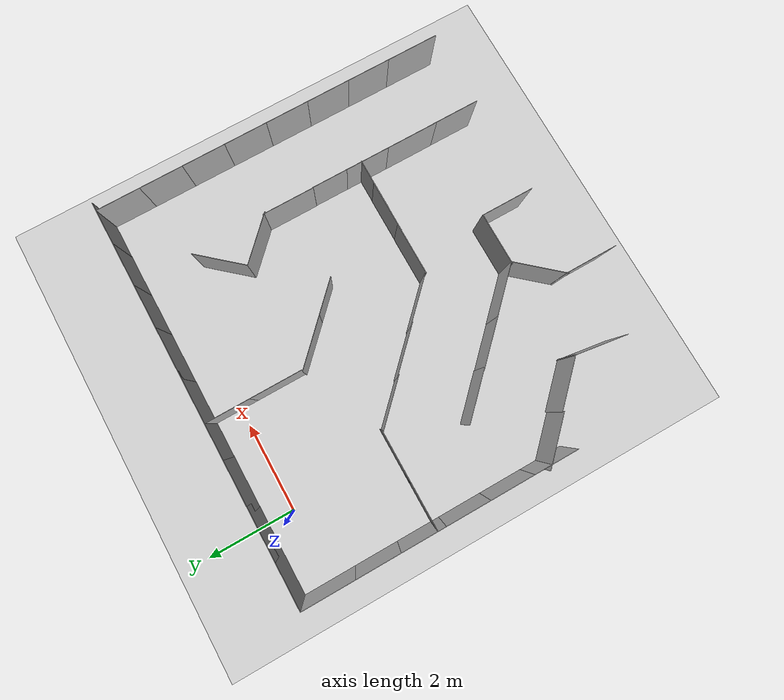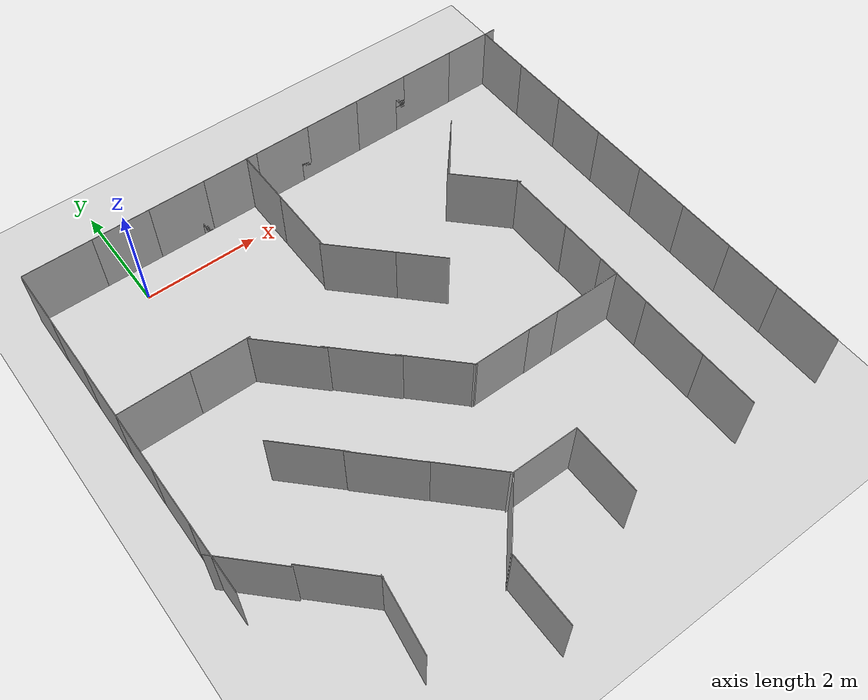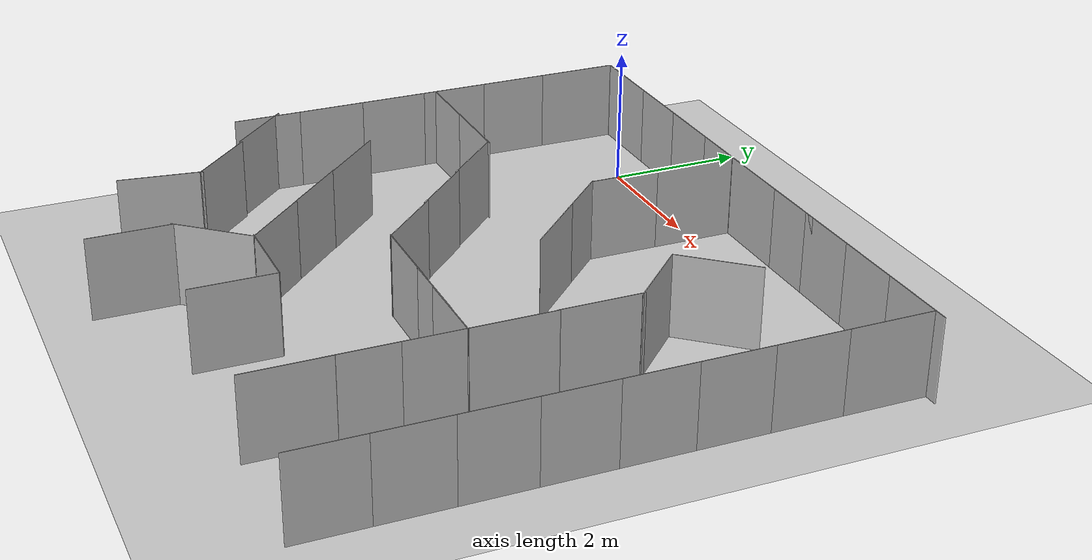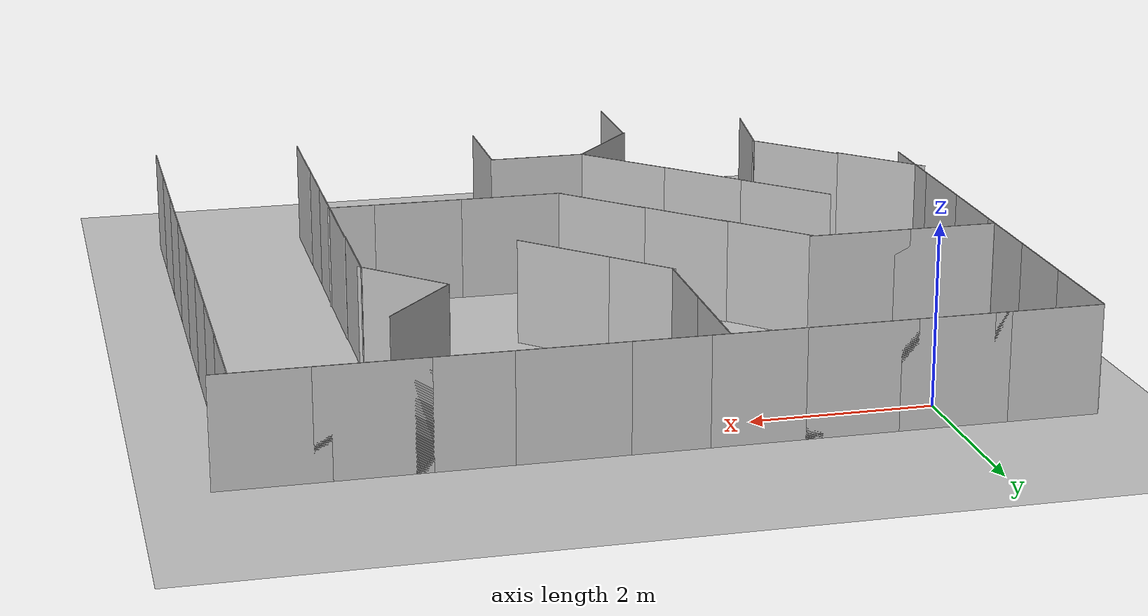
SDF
<sdf version="1.6">
 <world name="default">
  <model name="ground_plane">
   <static>1</static>
   <link name="link">
    <collision name="collision">
     <geometry><plane><normal>0 0 1</normal><size>100 100</size></plane></geometry>
     <surface>
      <contact><collide_bitmask>65535</collide_bitmask></contact>
      <friction><ode><mu>100</mu><mu2>50</mu2></ode></friction>
     </surface>
    </collision>
    <visual name="visual">
     <cast_shadows>0</cast_shadows>
     <geometry><plane><normal>0 0 1</normal><size>100 100</size></plane></geometry>
     <material>
      <script><uri>file://media/materials/scripts/gazebo.material</uri><name>Gazebo/Grey</name></script>
     </material>
    </visual>
   </link>
  </model>
  <model name="nist_maze_wall_120">
   <static>1</static>
   <link name="nist_maze_wall_120_link">
    <collision name="collision">
     <geometry>
      <mesh><uri>model://nist_maze_wall_120/meshes/nist_maze_wall_120.dae</uri><scale>1 1 1</scale></mesh>
     </geometry>
    </collision>
    <visual name="visual">
     <geometry>
      <mesh><uri>model://nist_maze_wall_120/meshes/nist_maze_wall_120.dae</uri><scale>1 1 1</scale></mesh>
     </geometry>
    </visual>
   </link>
   <pose>-1 0 0 0 -0 0</pose>
  </model>
  <model name="nist_maze_wall_120_clone">
   <static>1</static>
   <link name="nist_maze_wall_120_link">
    <collision name="collision">
     <geometry>
      <mesh><uri>model://nist_maze_wall_120/meshes/nist_maze_wall_120.dae</uri><scale>1 1 1</scale></mesh>
     </geometry>
    </collision>
    <visual name="visual">
     <geometry>
      <mesh><uri>model://nist_maze_wall_120/meshes/nist_maze_wall_120.dae</uri><scale>1 1 1</scale></mesh>
     </geometry>
    </visual>
   </link>
  </model>
  <model name="nist_maze_wall_120_clone_0">
   <static>1</static>
   <link name="nist_maze_wall_120_link">
    <collision name="collision">
     <geometry>
      <mesh><uri>model://nist_maze_wall_120/meshes/nist_maze_wall_120.dae</uri><scale>1 1 1</scale></mesh>
     </geometry>
    </collision>
    <visual name="visual">
     <geometry>
      <mesh><uri>model://nist_maze_wall_120/meshes/nist_maze_wall_120.dae</uri><scale>1 1 1</scale></mesh>
     </geometry>
    </visual>
   </link>
   <pose>1 0 0 0 -0 0</pose>
  </model>
  <model name="nist_maze_wall_120_clone_0_clone_2">
   <static>1</static>
   <link name="nist_maze_wall_120_link">
    <collision name="collision">
     <geometry>
      <mesh><uri>model://nist_maze_wall_120/meshes/nist_maze_wall_120.dae</uri><scale>1 1 1</scale></mesh>
     </geometry>
    </collision>
    <visual name="visual">
     <geometry>
      <mesh><uri>model://nist_maze_wall_120/meshes/nist_maze_wall_120.dae</uri><scale>1 1 1</scale></mesh>
     </geometry>
    </visual>
   </link>
   <pose>4 0 0 0 -0 0</pose>
  </model>
  <model name="nist_maze_wall_120_clone_0_clone_7">
   <static>1</static>
   <link name="nist_maze_wall_120_link">
    <collision name="collision">
     <geometry>
      <mesh><uri>model://nist_maze_wall_120/meshes/nist_maze_wall_120.dae</uri><scale>1 1 1</scale></mesh>
     </geometry>
    </collision>
    <visual name="visual">
     <geometry>
      <mesh><uri>model://nist_maze_wall_120/meshes/nist_maze_wall_120.dae</uri><scale>1 1 1</scale></mesh>
     </geometry>
    </visual>
   </link>
   <pose>5 0 0 0 -0 0</pose>
  </model>
  <model name="nist_maze_wall_120_clone_0_clone_8">
   <static>1</static>
   <link name="nist_maze_wall_120_link">
    <collision name="collision">
     <geometry>
      <mesh><uri>model://nist_maze_wall_120/meshes/nist_maze_wall_120.dae</uri><scale>1 1 1</scale></mesh>
     </geometry>
    </collision>
    <visual name="visual">
     <geometry>
      <mesh><uri>model://nist_maze_wall_120/meshes/nist_maze_wall_120.dae</uri><scale>1 1 1</scale></mesh>
     </geometry>
    </visual>
   </link>
   <pose>6 0 0 0 -0 0</pose>
  </model>
  <model name="nist_maze_wall_120_clone_0_clone_9">
   <static>1</static>
   <link name="nist_maze_wall_120_link">
    <collision name="collision">
     <geometry>
      <mesh><uri>model://nist_maze_wall_120/meshes/nist_maze_wall_120.dae</uri><scale>1 1 1</scale></mesh>
     </geometry>
    </collision>
    <visual name="visual">
     <geometry>
      <mesh><uri>model://nist_maze_wall_120/meshes/nist_maze_wall_120.dae</uri><scale>1 1 1</scale></mesh>
     </geometry>
    </visual>
   </link>
   <pose>2.36851 -2.42794 -0 0 0 -0.785398</pose>
  </model>
  <model name="nist_maze_wall_120_clone_0_clone_0_clone">
   <static>1</static>
   <link name="nist_maze_wall_120_link">
    <collision name="collision">
     <geometry>
      <mesh><uri>model://nist_maze_wall_120/meshes/nist_maze_wall_120.dae</uri><scale>1 1 1</scale></mesh>
     </geometry>
    </collision>
    <visual name="visual">
     <geometry>
      <mesh><uri>model://nist_maze_wall_120/meshes/nist_maze_wall_120.dae</uri><scale>1 1 1</scale></mesh>
     </geometry>
    </visual>
   </link>
   <pose>2 0 0 0 -0 0</pose>
  </model>
  <model name="nist_maze_wall_120_clone_0_clone_8_clone">
   <static>1</static>
   <link name="nist_maze_wall_120_link">
    <collision name="collision">
     <geometry>
      <mesh><uri>model://nist_maze_wall_120/meshes/nist_maze_wall_120.dae</uri><scale>1 1 1</scale></mesh>
     </geometry>
    </collision>
    <visual name="visual">
     <geometry>
      <mesh><uri>model://nist_maze_wall_120/meshes/nist_maze_wall_120.dae</uri><scale>1 1 1</scale></mesh>
     </geometry>
    </visual>
   </link>
   <pose>3 -1 0 0 -0 1.5708</pose>
  </model>
  <model name="nist_maze_wall_120_clone_0_clone_8_clone_clone">
   <static>1</static>
   <link name="nist_maze_wall_120_link">
    <collision name="collision">
     <geometry>
      <mesh><uri>model://nist_maze_wall_120/meshes/nist_maze_wall_120.dae</uri><scale>1 1 1</scale></mesh>
     </geometry>
    </collision>
    <visual name="visual">
     <geometry>
      <mesh><uri>model://nist_maze_wall_120/meshes/nist_maze_wall_120.dae</uri><scale>1 1 1</scale></mesh>
     </geometry>
    </visual>
   </link>
   <pose>3 0 0 0 -0 1.5708</pose>
  </model>
  <model name="nist_maze_wall_120_clone_0_clone_8_clone_clone_0">
   <static>1</static>
   <link name="nist_maze_wall_120_link">
    <collision name="collision">
     <geometry>
      <mesh><uri>model://nist_maze_wall_120/meshes/nist_maze_wall_120.dae</uri><scale>1 1 1</scale></mesh>
     </geometry>
    </collision>
    <visual name="visual">
     <geometry>
      <mesh><uri>model://nist_maze_wall_120/meshes/nist_maze_wall_120.dae</uri><scale>1 1 1</scale></mesh>
     </geometry>
    </visual>
   </link>
   <pose>6.24673 -4.15515 0 0 -0 1.5708</pose>
  </model>
  <model name="nist_maze_wall_120_clone_0_clone_8_clone_clone_1">
   <static>1</static>
   <link name="nist_maze_wall_120_link">
    <collision name="collision">
     <geometry>
      <mesh><uri>model://nist_maze_wall_120/meshes/nist_maze_wall_120.dae</uri><scale>1 1 1</scale></mesh>
     </geometry>
    </collision>
    <visual name="visual">
     <geometry>
      <mesh><uri>model://nist_maze_wall_120/meshes/nist_maze_wall_120.dae</uri><scale>1 1 1</scale></mesh>
     </geometry>
    </visual>
   </link>
   <pose>6.2388 -3 0 0 -0 1.5708</pose>
  </model>
  <model name="nist_maze_wall_120_clone_0_clone_8_clone_clone_2">
   <static>1</static>
   <link name="nist_maze_wall_120_link">
    <collision name="collision">
     <geometry>
      <mesh><uri>model://nist_maze_wall_120/meshes/nist_maze_wall_120.dae</uri><scale>1 1 1</scale></mesh>
     </geometry>
    </collision>
    <visual name="visual">
     <geometry>
      <mesh><uri>model://nist_maze_wall_120/meshes/nist_maze_wall_120.dae</uri><scale>1 1 1</scale></mesh>
     </geometry>
    </visual>
   </link>
   <pose>8 -2 0 0 -0 1.5708</pose>
  </model>
  <model name="nist_maze_wall_120_clone_0_clone_8_clone_clone_3">
   <static>1</static>
   <link name="nist_maze_wall_120_link">
    <collision name="collision">
     <geometry>
      <mesh><uri>model://nist_maze_wall_120/meshes/nist_maze_wall_120.dae</uri><scale>1 1 1</scale></mesh>
     </geometry>
    </collision>
    <visual name="visual">
     <geometry>
      <mesh><uri>model://nist_maze_wall_120/meshes/nist_maze_wall_120.dae</uri><scale>1 1 1</scale></mesh>
     </geometry>
    </visual>
   </link>
   <pose>8 0 0 0 -0 1.5708</pose>
  </model>
  <model name="nist_maze_wall_120_clone_0_clone_8_clone_clone_4">
   <static>1</static>
   <link name="nist_maze_wall_120_link">
    <collision name="collision">
     <geometry>
      <mesh><uri>model://nist_maze_wall_120/meshes/nist_maze_wall_120.dae</uri><scale>1 1 1</scale></mesh>
     </geometry>
    </collision>
    <visual name="visual">
     <geometry>
      <mesh><uri>model://nist_maze_wall_120/meshes/nist_maze_wall_120.dae</uri><scale>1 1 1</scale></mesh>
     </geometry>
    </visual>
   </link>
   <pose>8 -1 0 0 -0 1.5708</pose>
  </model>
  <model name="nist_maze_wall_120_clone_0_clone_8_clone_clone_5">
   <static>1</static>
   <link name="nist_maze_wall_120_link">
    <collision name="collision">
     <geometry>
      <mesh><uri>model://nist_maze_wall_120/meshes/nist_maze_wall_120.dae</uri><scale>1 1 1</scale></mesh>
     </geometry>
    </collision>
    <visual name="visual">
     <geometry>
      <mesh><uri>model://nist_maze_wall_120/meshes/nist_maze_wall_120.dae</uri><scale>1 1 1</scale></mesh>
     </geometry>
    </visual>
   </link>
   <pose>8 -4 0 0 -0 1.5708</pose>
  </model>
  <model name="nist_maze_wall_120_clone_0_clone_8_clone_clone_6">
   <static>1</static>
   <link name="nist_maze_wall_120_link">
    <collision name="collision">
     <geometry>
      <mesh><uri>model://nist_maze_wall_120/meshes/nist_maze_wall_120.dae</uri><scale>1 1 1</scale></mesh>
     </geometry>
    </collision>
    <visual name="visual">
     <geometry>
      <mesh><uri>model://nist_maze_wall_120/meshes/nist_maze_wall_120.dae</uri><scale>1 1 1</scale></mesh>
     </geometry>
    </visual>
   </link>
   <pose>-1 0 0 0 -0 1.5708</pose>
  </model>
  <model name="nist_maze_wall_120_clone_0_clone_8_clone_clone_7">
   <static>1</static>
   <link name="nist_maze_wall_120_link">
    <collision name="collision">
     <geometry>
      <mesh><uri>model://nist_maze_wall_120/meshes/nist_maze_wall_120.dae</uri><scale>1 1 1</scale></mesh>
     </geometry>
    </collision>
    <visual name="visual">
     <geometry>
      <mesh><uri>model://nist_maze_wall_120/meshes/nist_maze_wall_120.dae</uri><scale>1 1 1</scale></mesh>
     </geometry>
    </visual>
   </link>
   <pose>-1 -1 0 0 -0 1.5708</pose>
  </model>
  <model name="nist_maze_wall_120_clone_0_clone_8_clone_clone_11">
   <static>1</static>
   <link name="nist_maze_wall_120_link">
    <collision name="collision">
     <geometry>
      <mesh><uri>model://nist_maze_wall_120/meshes/nist_maze_wall_120.dae</uri><scale>1 1 1</scale></mesh>
     </geometry>
    </collision>
    <visual name="visual">
     <geometry>
      <mesh><uri>model://nist_maze_wall_120/meshes/nist_maze_wall_120.dae</uri><scale>1 1 1</scale></mesh>
     </geometry>
    </visual>
   </link>
   <pose>-1 -2 0 0 -0 1.5708</pose>
  </model>
  <model name="nist_maze_wall_120_clone_1">
   <static>1</static>
   <link name="nist_maze_wall_120_link">
    <collision name="collision">
     <geometry>
      <mesh><uri>model://nist_maze_wall_120/meshes/nist_maze_wall_120.dae</uri><scale>1 1 1</scale></mesh>
     </geometry>
    </collision>
    <visual name="visual">
     <geometry>
      <mesh><uri>model://nist_maze_wall_120/meshes/nist_maze_wall_120.dae</uri><scale>1 1 1</scale></mesh>
     </geometry>
    </visual>
   </link>
   <pose>-1 -3 0 0 -0 0</pose>
  </model>
  <model name="nist_maze_wall_120_clone_2">
   <static>1</static>
   <link name="nist_maze_wall_120_link">
    <collision name="collision">
     <geometry>
      <mesh><uri>model://nist_maze_wall_120/meshes/nist_maze_wall_120.dae</uri><scale>1 1 1</scale></mesh>
     </geometry>
    </collision>
    <visual name="visual">
     <geometry>
      <mesh><uri>model://nist_maze_wall_120/meshes/nist_maze_wall_120.dae</uri><scale>1 1 1</scale></mesh>
     </geometry>
    </visual>
   </link>
   <pose>0 -3 0 0 -0 0</pose>
  </model>
  <model name="nist_maze_wall_120_clone_3">
   <static>1</static>
   <link name="nist_maze_wall_120_link">
    <collision name="collision">
     <geometry>
      <mesh><uri>model://nist_maze_wall_120/meshes/nist_maze_wall_120.dae</uri><scale>1 1 1</scale></mesh>
     </geometry>
    </collision>
    <visual name="visual">
     <geometry>
      <mesh><uri>model://nist_maze_wall_120/meshes/nist_maze_wall_120.dae</uri><scale>1 1 1</scale></mesh>
     </geometry>
    </visual>
   </link>
   <pose>3.49655 -5.35182 0 0 -0 0</pose>
  </model>
  <model name="nist_maze_wall_120_clone_4">
   <static>1</static>
   <link name="nist_maze_wall_120_link">
    <collision name="collision">
     <geometry>
      <mesh><uri>model://nist_maze_wall_120/meshes/nist_maze_wall_120.dae</uri><scale>1 1 1</scale></mesh>
     </geometry>
    </collision>
    <visual name="visual">
     <geometry>
      <mesh><uri>model://nist_maze_wall_120/meshes/nist_maze_wall_120.dae</uri><scale>1 1 1</scale></mesh>
     </geometry>
    </visual>
   </link>
   <pose>5.06837 -5.36174 0 0 -0 0</pose>
  </model>
  <model name="nist_maze_wall_120_clone_5">
   <static>1</static>
   <link name="nist_maze_wall_120_link">
    <collision name="collision">
     <geometry>
      <mesh><uri>model://nist_maze_wall_120/meshes/nist_maze_wall_120.dae</uri><scale>1 1 1</scale></mesh>
     </geometry>
    </collision>
    <visual name="visual">
     <geometry>
      <mesh><uri>model://nist_maze_wall_120/meshes/nist_maze_wall_120.dae</uri><scale>1 1 1</scale></mesh>
     </geometry>
    </visual>
   </link>
   <pose>5.67552 -1.56373 0 0 -0 0.859737</pose>
  </model>
  <model name="nist_maze_wall_120_clone_6">
   <static>1</static>
   <link name="nist_maze_wall_120_link">
    <collision name="collision">
     <geometry>
      <mesh><uri>model://nist_maze_wall_120/meshes/nist_maze_wall_120.dae</uri><scale>1 1 1</scale></mesh>
     </geometry>
    </collision>
    <visual name="visual">
     <geometry>
      <mesh><uri>model://nist_maze_wall_120/meshes/nist_maze_wall_120.dae</uri><scale>1 1 1</scale></mesh>
     </geometry>
    </visual>
   </link>
   <pose>3 0 0 0 -0 0</pose>
  </model>
  <model name="nist_maze_wall_120_clone_7">
   <static>1</static>
   <link name="nist_maze_wall_120_link">
    <collision name="collision">
     <geometry>
      <mesh><uri>model://nist_maze_wall_120/meshes/nist_maze_wall_120.dae</uri><scale>1 1 1</scale></mesh>
     </geometry>
    </collision>
    <visual name="visual">
     <geometry>
      <mesh><uri>model://nist_maze_wall_120/meshes/nist_maze_wall_120.dae</uri><scale>1 1 1</scale></mesh>
     </geometry>
    </visual>
   </link>
   <pose>4.52175 -5.3564 0 0 -0 0</pose>
  </model>
  <model name="nist_maze_wall_120_clone_0_clone_9_clone">
   <static>1</static>
   <link name="nist_maze_wall_120_link">
    <collision name="collision">
     <geometry>
      <mesh><uri>model://nist_maze_wall_120/meshes/nist_maze_wall_120.dae</uri><scale>1 1 1</scale></mesh>
     </geometry>
    </collision>
    <visual name="visual">
     <geometry>
      <mesh><uri>model://nist_maze_wall_120/meshes/nist_maze_wall_120.dae</uri><scale>1 1 1</scale></mesh>
     </geometry>
    </visual>
   </link>
   <pose>2.95445 -3.01156 0 0 0 -0.785398</pose>
  </model>
  <model name="nist_maze_wall_120_clone_0_clone_9_clone_0">
   <static>1</static>
   <link name="nist_maze_wall_120_link">
    <collision name="collision">
     <geometry>
      <mesh><uri>model://nist_maze_wall_120/meshes/nist_maze_wall_120.dae</uri><scale>1 1 1</scale></mesh>
     </geometry>
    </collision>
    <visual name="visual">
     <geometry>
      <mesh><uri>model://nist_maze_wall_120/meshes/nist_maze_wall_120.dae</uri><scale>1 1 1</scale></mesh>
     </geometry>
    </visual>
   </link>
   <pose>0.538359 -3.24676 0 0 0 -0.785398</pose>
  </model>
  <model name="nist_maze_wall_120_clone_0_clone_9_clone_1">
   <static>1</static>
   <link name="nist_maze_wall_120_link">
    <collision name="collision">
     <geometry>
      <mesh><uri>model://nist_maze_wall_120/meshes/nist_maze_wall_120.dae</uri><scale>1 1 1</scale></mesh>
     </geometry>
    </collision>
    <visual name="visual">
     <geometry>
      <mesh><uri>model://nist_maze_wall_120/meshes/nist_maze_wall_120.dae</uri><scale>1 1 1</scale></mesh>
     </geometry>
    </visual>
   </link>
   <pose>1.32503 -4.012 0 0 0 -0.785398</pose>
  </model>
  <model name="nist_maze_wall_120_clone_0_clone_9_clone_2">
   <static>1</static>
   <link name="nist_maze_wall_120_link">
    <collision name="collision">
     <geometry>
      <mesh><uri>model://nist_maze_wall_120/meshes/nist_maze_wall_120.dae</uri><scale>1 1 1</scale></mesh>
     </geometry>
    </collision>
    <visual name="visual">
     <geometry>
      <mesh><uri>model://nist_maze_wall_120/meshes/nist_maze_wall_120.dae</uri><scale>1 1 1</scale></mesh>
     </geometry>
    </visual>
   </link>
   <pose>2.09964 -4.76804 0 0 0 -0.785398</pose>
  </model>
  <model name="nist_maze_wall_120_clone_0_clone_8_clone_0">
   <static>1</static>
   <link name="nist_maze_wall_120_link">
    <collision name="collision">
     <geometry>
      <mesh><uri>model://nist_maze_wall_120/meshes/nist_maze_wall_120.dae</uri><scale>1 1 1</scale></mesh>
     </geometry>
    </collision>
    <visual name="visual">
     <geometry>
      <mesh><uri>model://nist_maze_wall_120/meshes/nist_maze_wall_120.dae</uri><scale>1 1 1</scale></mesh>
     </geometry>
    </visual>
   </link>
   <pose>7 0 0 0 -0 0</pose>
  </model>
  <model name="nist_maze_wall_120_clone_0_clone_8_clone_clone_2_clone">
   <static>1</static>
   <link name="nist_maze_wall_120_link">
    <collision name="collision">
     <geometry>
      <mesh><uri>model://nist_maze_wall_120/meshes/nist_maze_wall_120.dae</uri><scale>1 1 1</scale></mesh>
     </geometry>
    </collision>
    <visual name="visual">
     <geometry>
      <mesh><uri>model://nist_maze_wall_120/meshes/nist_maze_wall_120.dae</uri><scale>1 1 1</scale></mesh>
     </geometry>
    </visual>
   </link>
   <pose>8 -3 0 0 -0 1.5708</pose>
  </model>
  <model name="nist_maze_wall_120_clone_0_clone_9_clone_clone">
   <static>1</static>
   <link name="nist_maze_wall_120_link">
    <collision name="collision">
     <geometry>
      <mesh><uri>model://nist_maze_wall_120/meshes/nist_maze_wall_120.dae</uri><scale>1 1 1</scale></mesh>
     </geometry>
    </collision>
    <visual name="visual">
     <geometry>
      <mesh><uri>model://nist_maze_wall_120/meshes/nist_maze_wall_120.dae</uri><scale>1 1 1</scale></mesh>
     </geometry>
    </visual>
   </link>
   <pose>4.82694 -2.46879 0 0 0 -0.785398</pose>
  </model>
  <model name="nist_maze_wall_120_clone_0_clone_8_clone_clone_5_clone">
   <static>1</static>
   <link name="nist_maze_wall_120_link">
    <collision name="collision">
     <geometry>
      <mesh><uri>model://nist_maze_wall_120/meshes/nist_maze_wall_120.dae</uri><scale>1 1 1</scale></mesh>
     </geometry>
    </collision>
    <visual name="visual">
     <geometry>
      <mesh><uri>model://nist_maze_wall_120/meshes/nist_maze_wall_120.dae</uri><scale>1 1 1</scale></mesh>
     </geometry>
    </visual>
   </link>
   <pose>8 -5 0 0 -0 1.5708</pose>
  </model>
  <model name="nist_maze_wall_120_clone_0_clone_8_clone_clone_5_clone_0">
   <static>1</static>
   <link name="nist_maze_wall_120_link">
    <collision name="collision">
     <geometry>
      <mesh><uri>model://nist_maze_wall_120/meshes/nist_maze_wall_120.dae</uri><scale>1 1 1</scale></mesh>
     </geometry>
    </collision>
    <visual name="visual">
     <geometry>
      <mesh><uri>model://nist_maze_wall_120/meshes/nist_maze_wall_120.dae</uri><scale>1 1 1</scale></mesh>
     </geometry>
    </visual>
   </link>
   <pose>8 -6 0 0 -0 1.5708</pose>
  </model>
  <model name="nist_maze_wall_120_clone_0_clone_8_clone_clone_5_clone_1">
   <static>1</static>
   <link name="nist_maze_wall_120_link">
    <collision name="collision">
     <geometry>
      <mesh><uri>model://nist_maze_wall_120/meshes/nist_maze_wall_120.dae</uri><scale>1 1 1</scale></mesh>
     </geometry>
    </collision>
    <visual name="visual">
     <geometry>
      <mesh><uri>model://nist_maze_wall_120/meshes/nist_maze_wall_120.dae</uri><scale>1 1 1</scale></mesh>
     </geometry>
    </visual>
   </link>
   <pose>8 -7 0 0 -0 1.5708</pose>
  </model>
  <model name="nist_maze_wall_120_clone_0_clone_8_clone_clone_5_clone_4">
   <static>1</static>
   <link name="nist_maze_wall_120_link">
    <collision name="collision">
     <geometry>
      <mesh><uri>model://nist_maze_wall_120/meshes/nist_maze_wall_120.dae</uri><scale>1 1 1</scale></mesh>
     </geometry>
    </collision>
    <visual name="visual">
     <geometry>
      <mesh><uri>model://nist_maze_wall_120/meshes/nist_maze_wall_120.dae</uri><scale>1 1 1</scale></mesh>
     </geometry>
    </visual>
   </link>
   <pose>6.245 -5 0 0 -0 1.5708</pose>
  </model>
  <model name="nist_maze_wall_120_clone_0_clone_8_clone_clone_5_clone_5">
   <static>1</static>
   <link name="nist_maze_wall_120_link">
    <collision name="collision">
     <geometry>
      <mesh><uri>model://nist_maze_wall_120/meshes/nist_maze_wall_120.dae</uri><scale>1 1 1</scale></mesh>
     </geometry>
    </collision>
    <visual name="visual">
     <geometry>
      <mesh><uri>model://nist_maze_wall_120/meshes/nist_maze_wall_120.dae</uri><scale>1 1 1</scale></mesh>
     </geometry>
    </visual>
   </link>
   <pose>6.2446 -6 0 0 -0 1.5708</pose>
  </model>
  <model name="nist_maze_wall_120_clone_0_clone_8_clone_clone_5_clone_6">
   <static>1</static>
   <link name="nist_maze_wall_120_link">
    <collision name="collision">
     <geometry>
      <mesh><uri>model://nist_maze_wall_120/meshes/nist_maze_wall_120.dae</uri><scale>1 1 1</scale></mesh>
     </geometry>
    </collision>
    <visual name="visual">
     <geometry>
      <mesh><uri>model://nist_maze_wall_120/meshes/nist_maze_wall_120.dae</uri><scale>1 1 1</scale></mesh>
     </geometry>
    </visual>
   </link>
   <pose>6.24737 -7 0 0 -0 1.5708</pose>
  </model>
  <model name="nist_maze_wall_120_clone_0_clone_8_clone_clone_5_clone_6_clone_1">
   <static>1</static>
   <link name="nist_maze_wall_120_link">
    <collision name="collision">
     <geometry>
      <mesh><uri>model://nist_maze_wall_120/meshes/nist_maze_wall_120.dae</uri><scale>1 1 1</scale></mesh>
     </geometry>
    </collision>
    <visual name="visual">
     <geometry>
      <mesh><uri>model://nist_maze_wall_120/meshes/nist_maze_wall_120.dae</uri><scale>1 1 1</scale></mesh>
     </geometry>
    </visual>
   </link>
   <pose>4 -7 0 0 -0 1.5708</pose>
  </model>
  <model name="nist_maze_wall_120_clone_0_clone_8_clone_clone_5_clone_6_clone_2">
   <static>1</static>
   <link name="nist_maze_wall_120_link">
    <collision name="collision">
     <geometry>
      <mesh><uri>model://nist_maze_wall_120/meshes/nist_maze_wall_120.dae</uri><scale>1 1 1</scale></mesh>
     </geometry>
    </collision>
    <visual name="visual">
     <geometry>
      <mesh><uri>model://nist_maze_wall_120/meshes/nist_maze_wall_120.dae</uri><scale>1 1 1</scale></mesh>
     </geometry>
    </visual>
   </link>
   <pose>-1 -3 0 0 -0 1.5708</pose>
  </model>
  <model name="nist_maze_wall_120_clone_0_clone_8_clone_clone_5_clone_6_clone_3">
   <static>1</static>
   <link name="nist_maze_wall_120_link">
    <collision name="collision">
     <geometry>
      <mesh><uri>model://nist_maze_wall_120/meshes/nist_maze_wall_120.dae</uri><scale>1 1 1</scale></mesh>
     </geometry>
    </collision>
    <visual name="visual">
     <geometry>
      <mesh><uri>model://nist_maze_wall_120/meshes/nist_maze_wall_120.dae</uri><scale>1 1 1</scale></mesh>
     </geometry>
    </visual>
   </link>
   <pose>-1 -4 0 0 -0 1.5708</pose>
  </model>
  <model name="nist_maze_wall_120_clone_0_clone_8_clone_clone_5_clone_6_clone_4">
   <static>1</static>
   <link name="nist_maze_wall_120_link">
    <collision name="collision">
     <geometry>
      <mesh><uri>model://nist_maze_wall_120/meshes/nist_maze_wall_120.dae</uri><scale>1 1 1</scale></mesh>
     </geometry>
    </collision>
    <visual name="visual">
     <geometry>
      <mesh><uri>model://nist_maze_wall_120/meshes/nist_maze_wall_120.dae</uri><scale>1 1 1</scale></mesh>
     </geometry>
    </visual>
   </link>
   <pose>-1 -5 0 0 -0 1.5708</pose>
  </model>
  <model name="nist_maze_wall_120_clone_3_clone">
   <static>1</static>
   <link name="nist_maze_wall_120_link">
    <collision name="collision">
     <geometry>
      <mesh><uri>model://nist_maze_wall_120/meshes/nist_maze_wall_120.dae</uri><scale>1 1 1</scale></mesh>
     </geometry>
    </collision>
    <visual name="visual">
     <geometry>
      <mesh><uri>model://nist_maze_wall_120/meshes/nist_maze_wall_120.dae</uri><scale>1 1 1</scale></mesh>
     </geometry>
    </visual>
   </link>
   <pose>2.80885 -7 0 0 -0 0</pose>
  </model>
  <model name="nist_maze_wall_120_clone_0_clone_9_clone_2_clone">
   <static>1</static>
   <link name="nist_maze_wall_120_link">
    <collision name="collision">
     <geometry>
      <mesh><uri>model://nist_maze_wall_120/meshes/nist_maze_wall_120.dae</uri><scale>1 1 1</scale></mesh>
     </geometry>
    </collision>
    <visual name="visual">
     <geometry>
      <mesh><uri>model://nist_maze_wall_120/meshes/nist_maze_wall_120.dae</uri><scale>1 1 1</scale></mesh>
     </geometry>
    </visual>
   </link>
   <pose>1.42168 -6.40993 0 0 0 -0.785398</pose>
  </model>
  <model name="nist_maze_wall_120_clone_0_clone_9_clone_2_clone_0">
   <static>1</static>
   <link name="nist_maze_wall_120_link">
    <collision name="collision">
     <geometry>
      <mesh><uri>model://nist_maze_wall_120/meshes/nist_maze_wall_120.dae</uri><scale>1 1 1</scale></mesh>
     </geometry>
    </collision>
    <visual name="visual">
     <geometry>
      <mesh><uri>model://nist_maze_wall_120/meshes/nist_maze_wall_120.dae</uri><scale>1 1 1</scale></mesh>
     </geometry>
    </visual>
   </link>
   <pose>0.613898 -5.6077 0 0 0 -0.785398</pose>
  </model>
  <model name="nist_maze_wall_120_clone_0_clone_9_clone_2_clone_1">
   <static>1</static>
   <link name="nist_maze_wall_120_link">
    <collision name="collision">
     <geometry>
      <mesh><uri>model://nist_maze_wall_120/meshes/nist_maze_wall_120.dae</uri><scale>1 1 1</scale></mesh>
     </geometry>
    </collision>
    <visual name="visual">
     <geometry>
      <mesh><uri>model://nist_maze_wall_120/meshes/nist_maze_wall_120.dae</uri><scale>1 1 1</scale></mesh>
     </geometry>
    </visual>
   </link>
   <pose>-0.170834 -4.81042 0 0 0 -0.785398</pose>
  </model>
  <model name="nist_maze_wall_120_clone_5_clone">
   <static>1</static>
   <link name="nist_maze_wall_120_link">
    <collision name="collision">
     <geometry>
      <mesh><uri>model://nist_maze_wall_120/meshes/nist_maze_wall_120.dae</uri><scale>1 1 1</scale></mesh>
     </geometry>
    </collision>
    <visual name="visual">
     <geometry>
      <mesh><uri>model://nist_maze_wall_120/meshes/nist_maze_wall_120.dae</uri><scale>1 1 1</scale></mesh>
     </geometry>
    </visual>
   </link>
   <pose>2.32285 -7.25423 0 0 -0 0.859737</pose>
  </model>
  <model name="nist_maze_wall_120_clone_5_clone_0">
   <static>1</static>
   <link name="nist_maze_wall_120_link">
    <collision name="collision">
     <geometry>
      <mesh><uri>model://nist_maze_wall_120/meshes/nist_maze_wall_120.dae</uri><scale>1 1 1</scale></mesh>
     </geometry>
    </collision>
    <visual name="visual">
     <geometry>
      <mesh><uri>model://nist_maze_wall_120/meshes/nist_maze_wall_120.dae</uri><scale>1 1 1</scale></mesh>
     </geometry>
    </visual>
   </link>
   <pose>0.510403 -7.16893 0 0 -0 1.4342</pose>
  </model>
  <model name="nist_maze_wall_120_clone_0_clone_9_clone_2_clone_1_clone">
   <static>1</static>
   <link name="nist_maze_wall_120_link">
    <collision name="collision">
     <geometry>
      <mesh><uri>model://nist_maze_wall_120/meshes/nist_maze_wall_120.dae</uri><scale>1 1 1</scale></mesh>
     </geometry>
    </collision>
    <visual name="visual">
     <geometry>
      <mesh><uri>model://nist_maze_wall_120/meshes/nist_maze_wall_120.dae</uri><scale>1 1 1</scale></mesh>
     </geometry>
    </visual>
   </link>
   <pose>-1.69028 -5.7396 0 0 0 -0.785398</pose>
  </model>
  <model name="nist_maze_wall_120_clone_0_clone_9_clone_2_clone_1_clone_0">
   <static>1</static>
   <link name="nist_maze_wall_120_link">
    <collision name="collision">
     <geometry>
      <mesh><uri>model://nist_maze_wall_120/meshes/nist_maze_wall_120.dae</uri><scale>1 1 1</scale></mesh>
     </geometry>
    </collision>
    <visual name="visual">
     <geometry>
      <mesh><uri>model://nist_maze_wall_120/meshes/nist_maze_wall_120.dae</uri><scale>1 1 1</scale></mesh>
     </geometry>
    </visual>
   </link>
   <pose>-0.839871 -6.54271 0 0 0 -0.785398</pose>
  </model>
  <model name="nist_maze_wall_120_clone_0_clone_8_clone_clone_5_clone_6_clone_3_clone_0">
   <static>1</static>
   <link name="nist_maze_wall_120_link">
    <collision name="collision">
     <geometry>
      <mesh><uri>model://nist_maze_wall_120/meshes/nist_maze_wall_120.dae</uri><scale>1 1 1</scale></mesh>
     </geometry>
    </collision>
    <visual name="visual">
     <geometry>
      <mesh><uri>model://nist_maze_wall_120/meshes/nist_maze_wall_120.dae</uri><scale>1 1 1</scale></mesh>
     </geometry>
    </visual>
   </link>
   <pose>2.10658 -7.87085 0 0 -0 1.5708</pose>
  </model>
 </world>
</sdf>
